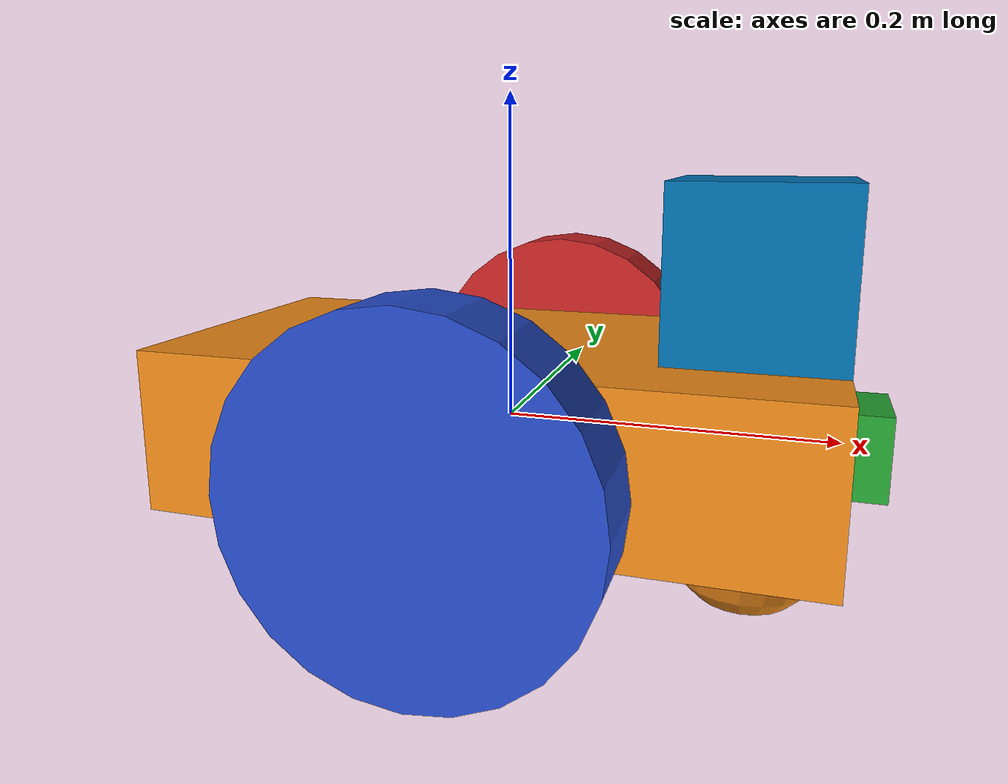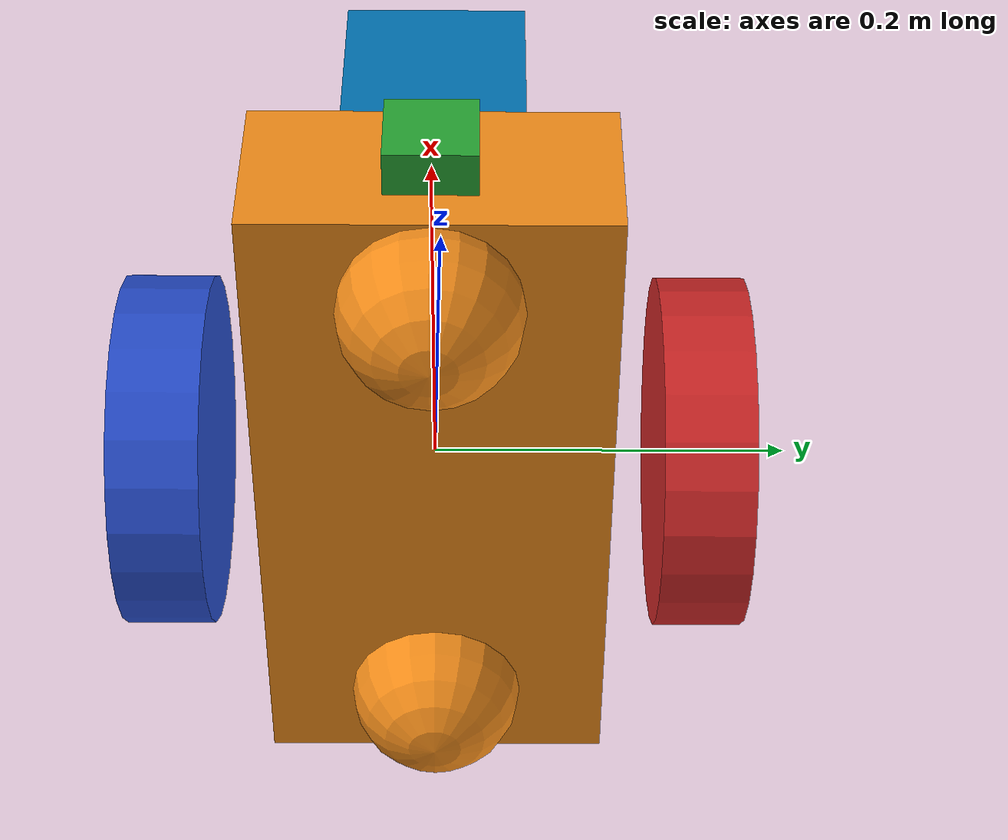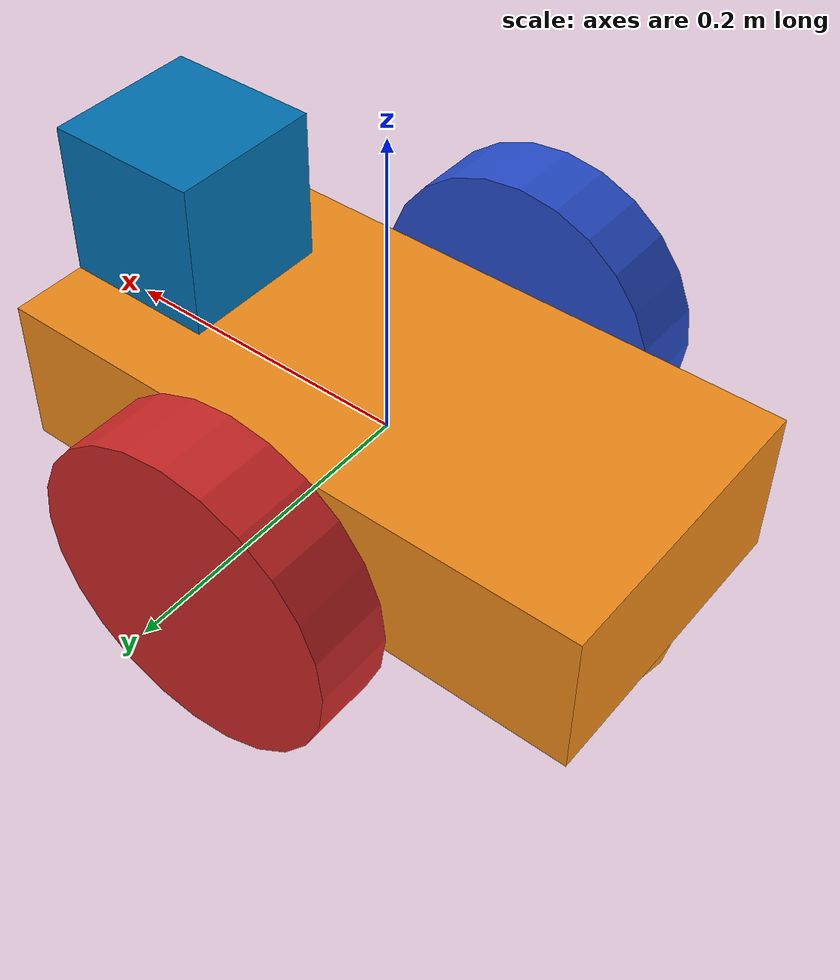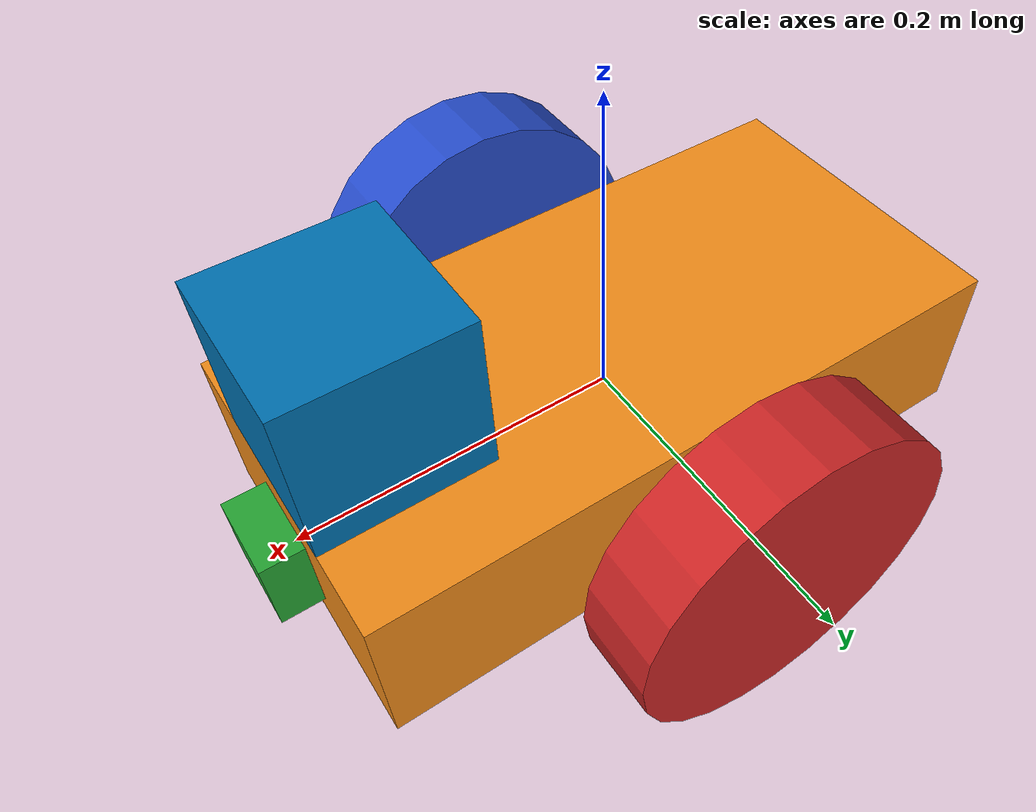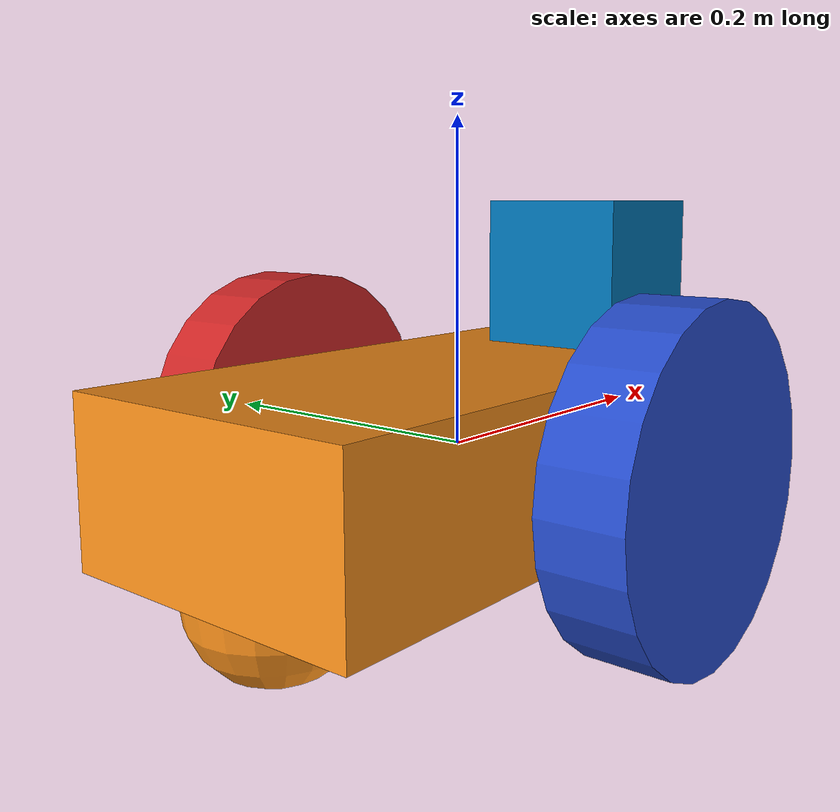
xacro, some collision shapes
<?xml version='1.0'?>

<robot name="myrobot" xmlns:xacro="http://www.ros.org/wiki/xacro">

  <xacro:property name="cameraSize" value="0.05"/>
  <xacro:property name="cameraMass" value="0.1"/>
  <xacro:property name = "chassisMass" value = "10.00"/>
  <xacro:property name = "chassisX" value = "0.4"/>
  <xacro:property name = "chassisY" value = "0.2"/>
  <xacro:property name = "chassisZ" value = "0.1"/>

  <xacro:property name = "wheelMass" value = "5.00"/>
  <xacro:property name = "wheelR" value = "0.1"/>
  <xacro:property name = "wheelH" value = "0.05"/>

  <xacro:property name = "castorMass" value = "5.00"/>
  <xacro:property name = "castorRadius" value = "0.05"/>

  <xacro:include filename="$(find mybot_description)/urdf/mybot.gazebo" />
  <xacro:include filename="$(find mybot_description)/urdf/materials.xacro" />
  <xacro:include filename="$(find mybot_description)/urdf/macros.xacro" />

  <link name='chassis'>
    <pose>0 0 0.1 0 0 0</pose>

    <inertial>
      <mass value="${chassisMass}"/>
      <origin xyz="0.0 0 0.0" rpy=" 0 0 0"/>
   <inertia
          ixx="0.3" ixy="0" ixz="0"
          iyy="0.3" iyz="0"
          izz="0.3"
      />

    </inertial>

    <collision name='collision'>
      <geometry>
        <box size=".4 .2 .1"/>
      </geometry>
    </collision>

    <visual name='chassis_visual'>
      <origin xyz="0 0 0" rpy=" 0 0 0"/>
      <geometry>
        <box size=".4 .2 .1"/>
      </geometry>
    </visual>

    <collision name='caster_collision'>
      <origin xyz="-0.15 0 -0.05" rpy=" 0 0 0"/>
      <geometry>
        <sphere radius="${castorRadius}"/>
      </geometry>
      <surface>
        <friction>
          <ode>
            <mu>0</mu>
            <mu2>0</mu2>
            <slip1>1.0</slip1>
            <slip2>1.0</slip2>
          </ode>
        </friction>
      </surface>
    </collision>

    <visual name='caster_visual'>
      <origin xyz="-0.15 0 -0.05" rpy=" 0 0 0"/>
      <geometry>
        <sphere radius="${castorRadius}"/>
      </geometry>
    </visual>

    <collision name='caster_front_collision'>
      <origin xyz="0.15 0 -0.05" rpy=" 0 0 0"/>
      <geometry>
        <sphere radius="${castorRadius}"/>
      </geometry>
      <surface>
        <friction>
          <ode>
            <mu>0</mu>
            <mu2>0</mu2>
            <slip1>1.0</slip1>
            <slip2>1.0</slip2>
          </ode>
        </friction>
      </surface>
    </collision>

    <visual name='caster_front_visual'>
      <origin xyz="0.15 0 -0.06" rpy=" 0 0 0"/>
      <geometry>
        <sphere radius="${castorRadius}"/>
      </geometry>
    </visual>

  </link>
  <link name="left_wheel">
    <!--origin xyz="0.1 0.13 0.1" rpy="0 1.5707 1.5707"/-->
    <collision name="collision_left">
      <origin xyz="0 0 0" rpy="0 1.5707 1.5707"/>
      <geometry>
        <cylinder radius="${wheelR}" length="${wheelH}"/>
      </geometry>
    </collision>
    <visual name="left_wheel_visual">
      <origin xyz="0 0 0" rpy="0 1.5707 1.5707"/>
      <geometry>
        <cylinder radius="${wheelR}" length="${wheelH}"/>
      </geometry>
    </visual>

    <inertial>
      <origin xyz="0 -0.0 0" rpy="0 1.5707 1.5707"/>
      <mass value="${wheelMass}"/>
      <inertia
        ixx="${wheelMass * (3 * wheelR * wheelR + wheelH * wheelH)/12}" ixy="0.0" ixz="0.0"
        iyy="${wheelMass * (3 * wheelR * wheelR + wheelH * wheelH)/12}" iyz="0.0"
        izz="${wheelMass * (3 * wheelR * wheelR + wheelH * wheelH)/12}"/>
    </inertial>
  </link>

  <link name="right_wheel">
    <!--origin xyz="0.1 -0.13 0.1" rpy="0 1.5707 1.5707"/-->
    <collision name="collision">
      <origin xyz="0 0 0" rpy="0 1.5707 1.5707"/>
      <geometry>
        <cylinder radius="${wheelR}" length="${wheelH}"/>
      </geometry>
    </collision>
    <visual name="right_wheel_visual">
      <origin xyz="0 0 0" rpy="0 1.5707 1.5707"/>
      <geometry>
       <cylinder radius="${wheelR}" length="${wheelH}"/>
      </geometry>
    </visual>

     <inertial>
      <origin xyz="0 -0.0 0" rpy="0 1.5707 1.5707"/>
      <mass value="${wheelMass}"/>
      <inertia
        ixx="${wheelMass * (3 * wheelR * wheelR + wheelH * wheelH)/12}" ixy="0.0" ixz="0.0"
        iyy="${wheelMass * (3 * wheelR * wheelR + wheelH * wheelH)/12}" iyz="0.0"
        izz="${wheelMass * (3 * wheelR * wheelR + wheelH * wheelH)/12}"/>
    </inertial>
  </link>

  <joint type="continuous" name="left_wheel_hinge">
    <origin xyz="0 0.15 0" rpy="0 0 0"/>
    <!--origin xyz="0.1 0.13 0" rpy="0 1.5707 1.5707"/-->
    <child link="left_wheel"/>
    <parent link="chassis"/>
    <axis xyz="0 1 0" rpy="0 0 0"/>
    <limit effort="10000" velocity="1000"/>
    <joint_properties damping="1.0" friction="1.0"/>
  </joint>

  <joint type="continuous" name="right_wheel_hinge">
    <origin xyz="0 -0.15 0" rpy="0 0 0"/>
    <!--origin xyz="0.1 -0.13 0" rpy="0 1.5707 1.5707"/-->
    <child link="right_wheel"/>
    <parent link="chassis"/>
    <axis xyz="0 1 0" rpy="0 0 0"/>
    <limit effort="10000" velocity="1000"/>
    <joint_properties damping="1.0" friction="1.0"/>
  </joint>

  <link name="camera">
    <collision>
      <origin xyz="0 0 0" rpy="0 0 0"/>
      <geometry>
        <box size="${cameraSize} ${cameraSize} ${cameraSize}"/>
      </geometry>
    </collision>

    <visual>
      <origin xyz="0 0 0" rpy="0 0 0"/>
      <geometry>
        <box size="${cameraSize} ${cameraSize} ${cameraSize}"/>
      </geometry>
      <material name="green"/>
    </visual>

    <inertial>
      <mass value="${cameraMass}" />
      <origin xyz="0 0 0" rpy="0 0 0"/>
      <box_inertia m="${cameraMass}" x="${cameraSize}" y="${cameraSize}" z="${cameraSize}" />
      <inertia ixx="1e-6" ixy="0" ixz="0" iyy="1e-6" iyz="0" izz="1e-6" />
    </inertial>
  </link>

  <joint name="camera_joint" type="fixed">
    <axis xyz="0 1 0" />
    <origin xyz=".2 0 0" rpy="0 0 0"/>
    <parent link="chassis"/>
    <child link="camera"/>
  </joint>

  <joint name="hokuyo_joint" type="fixed">
    <axis xyz="0 1 0" />
    <origin xyz=".15 0 .1" rpy="0 0 0"/>
    <parent link="chassis"/>
    <child link="hokuyo"/>
  </joint>

<!-- eagle is link planeed to introduced for getting the nearest obstacle dist to design the reward function -->
<!-- planning to introduce it later after some more reasearch in open ai Ros Gazebo libaries -->

  <!-- Hokuyo Laser -->
  <link name="hokuyo">
    <collision>
      <origin xyz="0 0 0" rpy="0 0 0"/>
      <geometry>
    <box size="0.1 0.1 0.1"/>
      </geometry>
    </collision>

    <visual>
      <origin xyz="0 0 0" rpy="0 0 0"/>
      <geometry>
        <mesh filename="package://mybot_description/meshes/hokuyo.dae"/>
      </geometry>
    </visual>

    <inertial>
      <mass value="1e-5" />
      <origin xyz="0 0 0" rpy="0 0 0"/>
      <inertia ixx="1e-6" ixy="0" ixz="0" iyy="1e-6" iyz="0" izz="1e-6" />
    </inertial>
  </link>

</robot>
